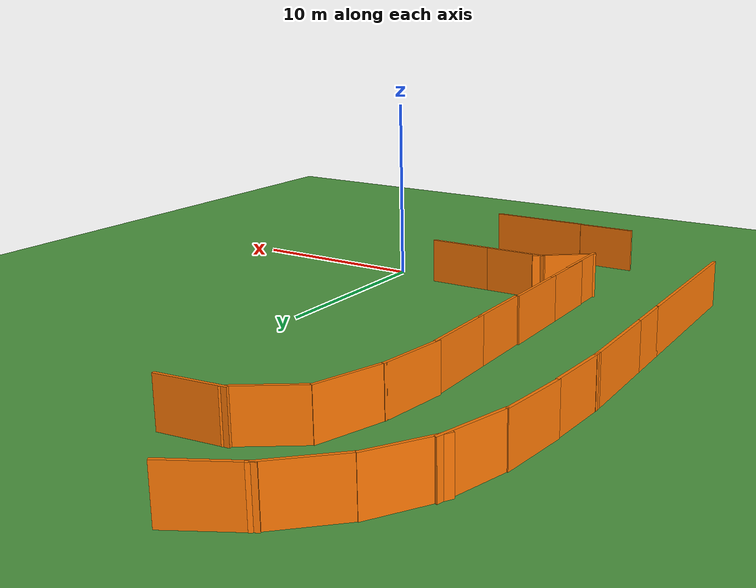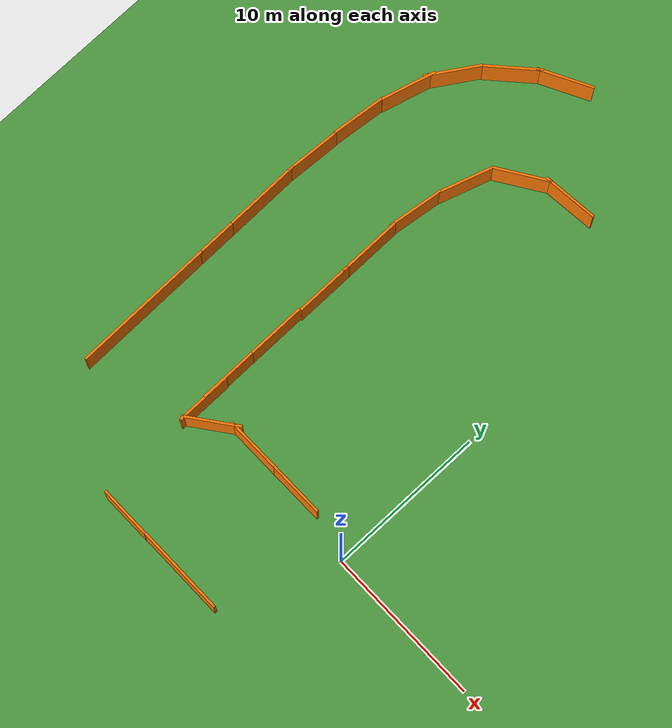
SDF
<sdf version="1.7">
 <world name="cimen_zemin_dunyasi">
  <model name="cimen_zemin">
   <static>1</static>
   <pose>-4.07306 2.53992 0 0 -0 0</pose>
   <link name="zemin_linki">
    <collision name="zemin_collision">
     <geometry><box><size>250 250 0.1</size></box></geometry>
     <surface><friction><ode><mu>1</mu><mu2>1</mu2></ode></friction></surface>
    </collision>
    <visual name="zemin_visual">
     <geometry><box><size>250 250 0.1</size></box></geometry>
     <material>
      <script><uri>file://media/materials/scripts/gazebo.material</uri><name>Gazebo/Grass</name></script>
     </material>
    </visual>
   </link>
  </model>
  <model name="barier3_clone_clone_clone_clone_0_clone_clone_clone_clone_0_clone_0">
   <link name="Wall_5">
    <pose>-0.876122 -2.31251 -0.000674 0 -0 0</pose>
    <inertial>
     <inertia><ixx>0</ixx><ixy>0</ixy><ixz>0</ixz><iyy>0</iyy><iyz>0</iyz><izz>0</izz></inertia>
     <mass>0</mass>
    </inertial>
    <visual name="Wall_5_Visual">
     <pose>0 0 1.25 0 -0 0</pose>
     <geometry><box><size>3.28339 0.15 2.5</size></box></geometry>
     <material>
      <script><uri>file://media/materials/scripts/gazebo.material</uri><name>Gazebo/Grey</name></script>
      <ambient>0.996078 0.47451 0.0196078 1</ambient>
      <shader type="pixel"/>
     </material>
     <meta><layer>0</layer></meta>
    </visual>
    <collision name="Wall_5_Collision">
     <pose>0 0 1.25 0 -0 0</pose>
     <geometry><box><size>3.28339 0.15 2.5</size></box></geometry>
     <surface>
      <friction>
       <ode><mu>1</mu><mu2>1</mu2><fdir1>0 0 0</fdir1><slip1>0</slip1><slip2>0</slip2></ode>
       <torsional>
        <coefficient>1</coefficient>
        <patch_radius>0</patch_radius>
        <surface_radius>0</surface_radius>
        <use_patch_radius>1</use_patch_radius>
        <ode><slip>0</slip></ode>
       </torsional>
      </friction>
      <bounce><restitution_coefficient>0</restitution_coefficient><threshold>1e+06</threshold></bounce>
      <contact>
       <collide_without_contact>0</collide_without_contact>
       <collide_without_contact_bitmask>1</collide_without_contact_bitmask>
       <collide_bitmask>1</collide_bitmask>
       <ode>
        <soft_cfm>0</soft_cfm>
        <soft_erp>0.2</soft_erp>
        <kp>1e+13</kp>
        <kd>1</kd>
        <max_vel>0.01</max_vel>
        <min_depth>0</min_depth>
       </ode>
       <bullet>
        <split_impulse>1</split_impulse>
        <split_impulse_penetration_threshold>-0.01</split_impulse_penetration_threshold>
        <soft_cfm>0</soft_cfm>
        <soft_erp>0.2</soft_erp>
        <kp>1e+13</kp>
        <kd>1</kd>
       </bullet>
      </contact>
     </surface>
    </collision>
   </link>
   <link name="Wall_9">
    <pose>3.5903 -2.29153 0.020971 0 -0 0</pose>
    <inertial>
     <inertia><ixx>0</ixx><ixy>0</ixy><ixz>0</ixz><iyy>0</iyy><iyz>0</iyz><izz>0</izz></inertia>
     <mass>0</mass>
    </inertial>
    <visual name="Wall_9_Visual">
     <pose>0 0 1.25 0 -0 0</pose>
     <geometry><box><size>5.65108 0.15 2.5</size></box></geometry>
     <material>
      <script><uri>file://media/materials/scripts/gazebo.material</uri><name>Gazebo/Grey</name></script>
      <ambient>0.996078 0.47451 0.0196078 1</ambient>
      <shader type="pixel"/>
     </material>
     <meta><layer>0</layer></meta>
    </visual>
    <collision name="Wall_9_Collision">
     <pose>0 0 1.25 0 -0 0</pose>
     <geometry><box><size>5.65108 0.15 2.5</size></box></geometry>
     <surface>
      <friction>
       <ode><mu>1</mu><mu2>1</mu2><fdir1>0 0 0</fdir1><slip1>0</slip1><slip2>0</slip2></ode>
       <torsional>
        <coefficient>1</coefficient>
        <patch_radius>0</patch_radius>
        <surface_radius>0</surface_radius>
        <use_patch_radius>1</use_patch_radius>
        <ode><slip>0</slip></ode>
       </torsional>
      </friction>
      <bounce><restitution_coefficient>0</restitution_coefficient><threshold>1e+06</threshold></bounce>
      <contact>
       <collide_without_contact>0</collide_without_contact>
       <collide_without_contact_bitmask>1</collide_without_contact_bitmask>
       <collide_bitmask>1</collide_bitmask>
       <ode>
        <soft_cfm>0</soft_cfm>
        <soft_erp>0.2</soft_erp>
        <kp>1e+13</kp>
        <kd>1</kd>
        <max_vel>0.01</max_vel>
        <min_depth>0</min_depth>
       </ode>
       <bullet>
        <split_impulse>1</split_impulse>
        <split_impulse_penetration_threshold>-0.01</split_impulse_penetration_threshold>
        <soft_cfm>0</soft_cfm>
        <soft_erp>0.2</soft_erp>
        <kp>1e+13</kp>
        <kd>1</kd>
       </bullet>
      </contact>
     </surface>
    </collision>
   </link>
   <static>1</static>
   <pose>-9.11126 -4.76807 0 0 -0 0</pose>
  </model>
  <model name="barrier2">
   <pose>-10.2583 29.644 0 0 -0 0.479879</pose>
   <link name="Wall_3">
    <collision name="Wall_3_Collision">
     <geometry><box><size>3.5 0.15 2.5</size></box></geometry>
     <pose>0 0 1.25 0 -0 0</pose>
    </collision>
    <visual name="Wall_3_Visual">
     <pose>0 0 1.25 0 -0 0</pose>
     <geometry><box><size>3.5 0.15 2.5</size></box></geometry>
     <material>
      <script><uri>file://media/materials/scripts/gazebo.material</uri><name>Gazebo/Grey</name></script>
      <ambient>0.996078 0.47451 0.0196078 1</ambient>
     </material>
     <meta><layer>0</layer></meta>
    </visual>
    <pose>-1.55327 -0.720218 0 0 -0 0</pose>
   </link>
   <static>1</static>
  </model>
  <model name="barrier2_clone">
   <pose>-13.1416 28.1133 0 0 -0 0.741197</pose>
   <link name="Wall_3">
    <collision name="Wall_3_Collision">
     <geometry><box><size>3.5 0.15 2.5</size></box></geometry>
     <pose>0 0 1.25 0 -0 0</pose>
    </collision>
    <visual name="Wall_3_Visual">
     <pose>0 0 1.25 0 -0 0</pose>
     <geometry><box><size>3.5 0.15 2.5</size></box></geometry>
     <material>
      <script><uri>file://media/materials/scripts/gazebo.material</uri><name>Gazebo/Grey</name></script>
      <ambient>0.996078 0.47451 0.0196078 1</ambient>
     </material>
     <meta><layer>0</layer></meta>
    </visual>
    <pose>-1.55327 -0.720218 0 0 -0 0</pose>
   </link>
   <static>1</static>
  </model>
  <model name="barrier2_clone_clone">
   <pose>-15.814 25.6119 0 0 -0 1.00081</pose>
   <link name="Wall_3">
    <collision name="Wall_3_Collision">
     <geometry><box><size>3.5 0.15 2.5</size></box></geometry>
     <pose>0 0 1.25 0 -0 0</pose>
    </collision>
    <visual name="Wall_3_Visual">
     <pose>0 0 1.25 0 -0 0</pose>
     <geometry><box><size>3.5 0.15 2.5</size></box></geometry>
     <material>
      <script><uri>file://media/materials/scripts/gazebo.material</uri><name>Gazebo/Grey</name></script>
      <ambient>0.996078 0.47451 0.0196078 1</ambient>
     </material>
     <meta><layer>0</layer></meta>
    </visual>
    <pose>-1.55327 -0.720218 0 0 -0 0</pose>
   </link>
   <static>1</static>
  </model>
  <model name="barrier2_clone_0">
   <pose>-4.58312 24.4241 0 0 -0 0.100794</pose>
   <link name="Wall_3">
    <collision name="Wall_3_Collision">
     <geometry><box><size>3.5 0.15 2.5</size></box></geometry>
     <pose>0 0 1.25 0 -0 0</pose>
    </collision>
    <visual name="Wall_3_Visual">
     <pose>0 0 1.25 0 -0 0</pose>
     <geometry><box><size>3.5 0.15 2.5</size></box></geometry>
     <material>
      <script><uri>file://media/materials/scripts/gazebo.material</uri><name>Gazebo/Grey</name></script>
      <ambient>0.996078 0.47451 0.0196078 1</ambient>
     </material>
     <meta><layer>0</layer></meta>
    </visual>
    <pose>-1.55327 -0.720218 0 0 -0 0</pose>
   </link>
   <static>1</static>
  </model>
  <model name="barrier2_clone_0_clone">
   <pose>-7.9744 23.9611 0 0 -0 0.576446</pose>
   <link name="Wall_3">
    <collision name="Wall_3_Collision">
     <geometry><box><size>3.5 0.15 2.5</size></box></geometry>
     <pose>0 0 1.25 0 -0 0</pose>
    </collision>
    <visual name="Wall_3_Visual">
     <pose>0 0 1.25 0 -0 0</pose>
     <geometry><box><size>3.5 0.15 2.5</size></box></geometry>
     <material>
      <script><uri>file://media/materials/scripts/gazebo.material</uri><name>Gazebo/Grey</name></script>
      <ambient>0.996078 0.47451 0.0196078 1</ambient>
     </material>
     <meta><layer>0</layer></meta>
    </visual>
    <pose>-1.55327 -0.720218 0 0 -0 0</pose>
   </link>
   <static>1</static>
  </model>
  <model name="barrier2_clone_0_clone_clone">
   <pose>-11.0573 21.664 0 0 -0 1.25855</pose>
   <link name="Wall_3">
    <collision name="Wall_3_Collision">
     <geometry><box><size>3.5 0.15 2.5</size></box></geometry>
     <pose>0 0 1.25 0 -0 0</pose>
    </collision>
    <visual name="Wall_3_Visual">
     <pose>0 0 1.25 0 -0 0</pose>
     <geometry><box><size>3.5 0.15 2.5</size></box></geometry>
     <material>
      <script><uri>file://media/materials/scripts/gazebo.material</uri><name>Gazebo/Grey</name></script>
      <ambient>0.996078 0.47451 0.0196078 1</ambient>
     </material>
     <meta><layer>0</layer></meta>
    </visual>
    <pose>-1.55327 -0.720218 0 0 -0 0</pose>
   </link>
   <static>1</static>
  </model>
  <model name="barrier2_clone_0_clone_clone_clone">
   <pose>-12.102 18.3665 0 0 -0 1.43662</pose>
   <link name="Wall_3">
    <collision name="Wall_3_Collision">
     <geometry><box><size>3.5 0.15 2.5</size></box></geometry>
     <pose>0 0 1.25 0 -0 0</pose>
    </collision>
    <visual name="Wall_3_Visual">
     <pose>0 0 1.25 0 -0 0</pose>
     <geometry><box><size>3.5 0.15 2.5</size></box></geometry>
     <material>
      <script><uri>file://media/materials/scripts/gazebo.material</uri><name>Gazebo/Grey</name></script>
      <ambient>0.996078 0.47451 0.0196078 1</ambient>
     </material>
     <meta><layer>0</layer></meta>
    </visual>
    <pose>-1.55327 -0.720218 0 0 -0 0</pose>
   </link>
   <static>1</static>
  </model>
  <model name="barrier2_clone_clone_clone">
   <pose>-17.4205 23.1156 0 0 -0 1.30186</pose>
   <link name="Wall_3">
    <collision name="Wall_3_Collision">
     <geometry><box><size>3.5 0.15 2.5</size></box></geometry>
     <pose>0 0 1.25 0 -0 0</pose>
    </collision>
    <visual name="Wall_3_Visual">
     <pose>0 0 1.25 0 -0 0</pose>
     <geometry><box><size>3.5 0.15 2.5</size></box></geometry>
     <material>
      <script><uri>file://media/materials/scripts/gazebo.material</uri><name>Gazebo/Grey</name></script>
      <ambient>0.996078 0.47451 0.0196078 1</ambient>
     </material>
     <meta><layer>0</layer></meta>
    </visual>
    <pose>-1.55327 -0.720218 0 0 -0 0</pose>
   </link>
   <static>1</static>
  </model>
  <model name="barrier2_clone_clone_clone_clone">
   <pose>-18.357 19.7461 0 0 -0 1.46324</pose>
   <link name="Wall_3">
    <collision name="Wall_3_Collision">
     <geometry><box><size>3.5 0.15 2.5</size></box></geometry>
     <pose>0 0 1.25 0 -0 0</pose>
    </collision>
    <visual name="Wall_3_Visual">
     <pose>0 0 1.25 0 -0 0</pose>
     <geometry><box><size>3.5 0.15 2.5</size></box></geometry>
     <material>
      <script><uri>file://media/materials/scripts/gazebo.material</uri><name>Gazebo/Grey</name></script>
      <ambient>0.996078 0.47451 0.0196078 1</ambient>
     </material>
     <meta><layer>0</layer></meta>
    </visual>
    <pose>-1.55327 -0.720218 0 0 -0 0</pose>
   </link>
   <static>1</static>
  </model>
  <model name="barrier2_clone_clone_clone_clone_clone">
   <pose>-18.687 16.3208 0 0 -0 1.50893</pose>
   <link name="Wall_3">
    <collision name="Wall_3_Collision">
     <geometry><box><size>3.5 0.15 2.5</size></box></geometry>
     <pose>0 0 1.25 0 -0 0</pose>
    </collision>
    <visual name="Wall_3_Visual">
     <pose>0 0 1.25 0 -0 0</pose>
     <geometry><box><size>3.5 0.15 2.5</size></box></geometry>
     <material>
      <script><uri>file://media/materials/scripts/gazebo.material</uri><name>Gazebo/Grey</name></script>
      <ambient>0.996078 0.47451 0.0196078 1</ambient>
     </material>
     <meta><layer>0</layer></meta>
    </visual>
    <pose>-1.55327 -0.720218 0 0 -0 0</pose>
   </link>
   <static>1</static>
  </model>
  <model name="barier3_0">
   <pose>-20.3436 5.22433 0 0 -0 1.58461</pose>
   <link name="Wall_5">
    <collision name="Wall_5_Collision">
     <geometry><box><size>9 0.15 2.5</size></box></geometry>
     <pose>0 0 1.25 0 -0 0</pose>
    </collision>
    <visual name="Wall_5_Visual">
     <pose>0 0 1.25 0 -0 0</pose>
     <geometry><box><size>9 0.15 2.5</size></box></geometry>
     <material>
      <script><uri>file://media/materials/scripts/gazebo.material</uri><name>Gazebo/Grey</name></script>
      <ambient>0.996078 0.47451 0.0196078 1</ambient>
     </material>
     <meta><layer>0</layer></meta>
    </visual>
    <pose>-3.6 -2.29057 0 0 -0 0</pose>
   </link>
   <link name="Wall_7">
    <collision name="Wall_7_Collision">
     <geometry><box><size>2.5 0.15 2.5</size></box></geometry>
     <pose>0 0 1.25 0 -0 0</pose>
    </collision>
    <visual name="Wall_7_Visual">
     <pose>0 0 1.25 0 -0 0</pose>
     <geometry><box><size>2.5 0.15 2.5</size></box></geometry>
     <material>
      <script><uri>file://media/materials/scripts/gazebo.material</uri><name>Gazebo/Grey</name></script>
      <ambient>0.996078 0.47451 0.0196078 1</ambient>
     </material>
     <meta><layer>0</layer></meta>
    </visual>
    <pose>2 -2.29057 0 0 -0 0</pose>
   </link>
   <link name="Wall_9">
    <collision name="Wall_9_Collision">
     <geometry><box><size>5 0.15 2.5</size></box></geometry>
     <pose>0 0 1.25 0 -0 0</pose>
    </collision>
    <visual name="Wall_9_Visual">
     <pose>0 0 1.25 0 -0 0</pose>
     <geometry><box><size>5 0.15 2.5</size></box></geometry>
     <material>
      <script><uri>file://media/materials/scripts/gazebo.material</uri><name>Gazebo/Grey</name></script>
      <ambient>0.996078 0.47451 0.0196078 1</ambient>
     </material>
     <meta><layer>0</layer></meta>
    </visual>
    <pose>5.6 -2.29057 0 0 -0 0</pose>
   </link>
   <static>1</static>
  </model>
  <model name="barier3_clone_clone_clone_clone_0_clone_clone_0_clone">
   <link name="Wall_5">
    <pose>-1.14926 -2.31114 0 0 -0 0</pose>
    <inertial>
     <inertia><ixx>0</ixx><ixy>0</ixy><ixz>0</ixz><iyy>0</iyy><iyz>0</iyz><izz>0</izz></inertia>
     <mass>0</mass>
    </inertial>
    <visual name="Wall_5_Visual">
     <pose>0 0 1.25 0 -0 0</pose>
     <geometry><box><size>4.04839 0.15 2.5</size></box></geometry>
     <material>
      <script><uri>file://media/materials/scripts/gazebo.material</uri><name>Gazebo/Grey</name></script>
      <ambient>0.996078 0.47451 0.0196078 1</ambient>
      <shader type="pixel"/>
     </material>
     <meta><layer>0</layer></meta>
    </visual>
    <collision name="Wall_5_Collision">
     <pose>0 0 1.25 0 -0 0</pose>
     <geometry><box><size>4.04839 0.15 2.5</size></box></geometry>
     <surface>
      <friction>
       <ode><mu>1</mu><mu2>1</mu2><fdir1>0 0 0</fdir1><slip1>0</slip1><slip2>0</slip2></ode>
       <torsional>
        <coefficient>1</coefficient>
        <patch_radius>0</patch_radius>
        <surface_radius>0</surface_radius>
        <use_patch_radius>1</use_patch_radius>
        <ode><slip>0</slip></ode>
       </torsional>
      </friction>
      <bounce><restitution_coefficient>0</restitution_coefficient><threshold>1e+06</threshold></bounce>
      <contact>
       <collide_without_contact>0</collide_without_contact>
       <collide_without_contact_bitmask>1</collide_without_contact_bitmask>
       <collide_bitmask>1</collide_bitmask>
       <ode>
        <soft_cfm>0</soft_cfm>
        <soft_erp>0.2</soft_erp>
        <kp>1e+13</kp>
        <kd>1</kd>
        <max_vel>0.01</max_vel>
        <min_depth>0</min_depth>
       </ode>
       <bullet>
        <split_impulse>1</split_impulse>
        <split_impulse_penetration_threshold>-0.01</split_impulse_penetration_threshold>
        <soft_cfm>0</soft_cfm>
        <soft_erp>0.2</soft_erp>
        <kp>1e+13</kp>
        <kd>1</kd>
       </bullet>
      </contact>
     </surface>
    </collision>
   </link>
   <link name="Wall_9">
    <pose>2.34493 -2.31065 0 0 -0 0</pose>
    <inertial>
     <inertia><ixx>0</ixx><ixy>0</ixy><ixz>0</ixz><iyy>0</iyy><iyz>0</iyz><izz>0</izz></inertia>
     <mass>0</mass>
    </inertial>
    <visual name="Wall_9_Visual">
     <pose>0 0 1.25 0 -0 0</pose>
     <geometry><box><size>3.66586 0.15 2.5</size></box></geometry>
     <material>
      <script><uri>file://media/materials/scripts/gazebo.material</uri><name>Gazebo/Grey</name></script>
      <ambient>0.996078 0.47451 0.0196078 1</ambient>
      <shader type="pixel"/>
     </material>
     <meta><layer>0</layer></meta>
    </visual>
    <collision name="Wall_9_Collision">
     <pose>0 0 1.25 0 -0 0</pose>
     <geometry><box><size>3.66586 0.15 2.5</size></box></geometry>
     <surface>
      <friction>
       <ode><mu>1</mu><mu2>1</mu2><fdir1>0 0 0</fdir1><slip1>0</slip1><slip2>0</slip2></ode>
       <torsional>
        <coefficient>1</coefficient>
        <patch_radius>0</patch_radius>
        <surface_radius>0</surface_radius>
        <use_patch_radius>1</use_patch_radius>
        <ode><slip>0</slip></ode>
       </torsional>
      </friction>
      <bounce><restitution_coefficient>0</restitution_coefficient><threshold>1e+06</threshold></bounce>
      <contact>
       <collide_without_contact>0</collide_without_contact>
       <collide_without_contact_bitmask>1</collide_without_contact_bitmask>
       <collide_bitmask>1</collide_bitmask>
       <ode>
        <soft_cfm>0</soft_cfm>
        <soft_erp>0.2</soft_erp>
        <kp>1e+13</kp>
        <kd>1</kd>
        <max_vel>0.01</max_vel>
        <min_depth>0</min_depth>
       </ode>
       <bullet>
        <split_impulse>1</split_impulse>
        <split_impulse_penetration_threshold>-0.01</split_impulse_penetration_threshold>
        <soft_cfm>0</soft_cfm>
        <soft_erp>0.2</soft_erp>
        <kp>1e+13</kp>
        <kd>1</kd>
       </bullet>
      </contact>
     </surface>
    </collision>
   </link>
   <static>1</static>
   <pose>-9.43805 12.101 0 0 0 -1.56598</pose>
  </model>
  <model name="barier3_clone_clone_clone_clone_0_clone_clone_0_clone_clone">
   <link name="Wall_5">
    <pose>-1.14926 -2.31114 0 0 -0 0</pose>
    <inertial>
     <inertia><ixx>0</ixx><ixy>0</ixy><ixz>0</ixz><iyy>0</iyy><iyz>0</iyz><izz>0</izz></inertia>
     <mass>0</mass>
    </inertial>
    <visual name="Wall_5_Visual">
     <pose>0 0 1.25 0 -0 0</pose>
     <geometry><box><size>4.04839 0.15 2.5</size></box></geometry>
     <material>
      <script><uri>file://media/materials/scripts/gazebo.material</uri><name>Gazebo/Grey</name></script>
      <ambient>0.996078 0.47451 0.0196078 1</ambient>
      <shader type="pixel"/>
     </material>
     <meta><layer>0</layer></meta>
    </visual>
    <collision name="Wall_5_Collision">
     <pose>0 0 1.25 0 -0 0</pose>
     <geometry><box><size>4.04839 0.15 2.5</size></box></geometry>
     <surface>
      <friction>
       <ode><mu>1</mu><mu2>1</mu2><fdir1>0 0 0</fdir1><slip1>0</slip1><slip2>0</slip2></ode>
       <torsional>
        <coefficient>1</coefficient>
        <patch_radius>0</patch_radius>
        <surface_radius>0</surface_radius>
        <use_patch_radius>1</use_patch_radius>
        <ode><slip>0</slip></ode>
       </torsional>
      </friction>
      <bounce><restitution_coefficient>0</restitution_coefficient><threshold>1e+06</threshold></bounce>
      <contact>
       <collide_without_contact>0</collide_without_contact>
       <collide_without_contact_bitmask>1</collide_without_contact_bitmask>
       <collide_bitmask>1</collide_bitmask>
       <ode>
        <soft_cfm>0</soft_cfm>
        <soft_erp>0.2</soft_erp>
        <kp>1e+13</kp>
        <kd>1</kd>
        <max_vel>0.01</max_vel>
        <min_depth>0</min_depth>
       </ode>
       <bullet>
        <split_impulse>1</split_impulse>
        <split_impulse_penetration_threshold>-0.01</split_impulse_penetration_threshold>
        <soft_cfm>0</soft_cfm>
        <soft_erp>0.2</soft_erp>
        <kp>1e+13</kp>
        <kd>1</kd>
       </bullet>
      </contact>
     </surface>
    </collision>
   </link>
   <link name="Wall_9">
    <pose>2.34493 -2.31065 0 0 -0 0</pose>
    <inertial>
     <inertia><ixx>0</ixx><ixy>0</ixy><ixz>0</ixz><iyy>0</iyy><iyz>0</iyz><izz>0</izz></inertia>
     <mass>0</mass>
    </inertial>
    <visual name="Wall_9_Visual">
     <pose>0 0 1.25 0 -0 0</pose>
     <geometry><box><size>3.66586 0.15 2.5</size></box></geometry>
     <material>
      <script><uri>file://media/materials/scripts/gazebo.material</uri><name>Gazebo/Grey</name></script>
      <ambient>0.996078 0.47451 0.0196078 1</ambient>
      <shader type="pixel"/>
     </material>
     <meta><layer>0</layer></meta>
    </visual>
    <collision name="Wall_9_Collision">
     <pose>0 0 1.25 0 -0 0</pose>
     <geometry><box><size>3.66586 0.15 2.5</size></box></geometry>
     <surface>
      <friction>
       <ode><mu>1</mu><mu2>1</mu2><fdir1>0 0 0</fdir1><slip1>0</slip1><slip2>0</slip2></ode>
       <torsional>
        <coefficient>1</coefficient>
        <patch_radius>0</patch_radius>
        <surface_radius>0</surface_radius>
        <use_patch_radius>1</use_patch_radius>
        <ode><slip>0</slip></ode>
       </torsional>
      </friction>
      <bounce><restitution_coefficient>0</restitution_coefficient><threshold>1e+06</threshold></bounce>
      <contact>
       <collide_without_contact>0</collide_without_contact>
       <collide_without_contact_bitmask>1</collide_without_contact_bitmask>
       <collide_bitmask>1</collide_bitmask>
       <ode>
        <soft_cfm>0</soft_cfm>
        <soft_erp>0.2</soft_erp>
        <kp>1e+13</kp>
        <kd>1</kd>
        <max_vel>0.01</max_vel>
        <min_depth>0</min_depth>
       </ode>
       <bullet>
        <split_impulse>1</split_impulse>
        <split_impulse_penetration_threshold>-0.01</split_impulse_penetration_threshold>
        <soft_cfm>0</soft_cfm>
        <soft_erp>0.2</soft_erp>
        <kp>1e+13</kp>
        <kd>1</kd>
       </bullet>
      </contact>
     </surface>
    </collision>
   </link>
   <static>1</static>
   <pose>-9.48925 4.74309 0 0 0 -1.56598</pose>
  </model>
  <model name="barrier2_clone_clone_0_clone_clone_clone_clone">
   <pose>-5.98223 -0.002861 0 0 0 -3.13631</pose>
   <link name="Wall_3">
    <collision name="Wall_3_Collision">
     <geometry><box><size>3.5 0.15 2.5</size></box></geometry>
     <pose>0 0 1.25 0 -0 0</pose>
    </collision>
    <visual name="Wall_3_Visual">
     <pose>0 0 1.25 0 -0 0</pose>
     <geometry><box><size>3.5 0.15 2.5</size></box></geometry>
     <material>
      <script><uri>file://media/materials/scripts/gazebo.material</uri><name>Gazebo/Grey</name></script>
      <ambient>0.996078 0.47451 0.0196078 1</ambient>
     </material>
     <meta><layer>0</layer></meta>
    </visual>
    <pose>-1.55327 -0.720218 0 0 -0 0</pose>
   </link>
   <static>1</static>
  </model>
  <model name="barrier2_clone_clone_0_clone_clone_clone_clone_clone">
   <pose>-9.47703 -0.025629 0 0 0 -3.13631</pose>
   <link name="Wall_3">
    <collision name="Wall_3_Collision">
     <geometry><box><size>3.5 0.15 2.5</size></box></geometry>
     <pose>0 0 1.25 0 -0 0</pose>
    </collision>
    <visual name="Wall_3_Visual">
     <pose>0 0 1.25 0 -0 0</pose>
     <geometry><box><size>3.5 0.15 2.5</size></box></geometry>
     <material>
      <script><uri>file://media/materials/scripts/gazebo.material</uri><name>Gazebo/Grey</name></script>
      <ambient>0.996078 0.47451 0.0196078 1</ambient>
     </material>
     <meta><layer>0</layer></meta>
    </visual>
    <pose>-1.55327 -0.720218 0 0 -0 0</pose>
   </link>
   <static>1</static>
  </model>
  <model name="barrier2_clone_clone_0_clone_clone_clone_clone_clone_clone">
   <pose>-11.2899 -1.59351 0 0 0 -2.49865</pose>
   <link name="Wall_3">
    <collision name="Wall_3_Collision">
     <geometry><box><size>3.5 0.15 2.5</size></box></geometry>
     <pose>0 0 1.25 0 -0 0</pose>
    </collision>
    <visual name="Wall_3_Visual">
     <pose>0 0 1.25 0 -0 0</pose>
     <geometry><box><size>3.5 0.15 2.5</size></box></geometry>
     <material>
      <script><uri>file://media/materials/scripts/gazebo.material</uri><name>Gazebo/Grey</name></script>
      <ambient>0.996078 0.47451 0.0196078 1</ambient>
     </material>
     <meta><layer>0</layer></meta>
    </visual>
    <pose>-1.55327 -0.720218 0 0 -0 0</pose>
   </link>
   <static>1</static>
  </model>
  <model name="barrier2_clone_clone_0_clone_clone_clone_clone_clone_clone_clone">
   <pose>-11.0179 -1.11958 0 0 0 -1.56879</pose>
   <link name="Wall_3">
    <collision name="Wall_3_Collision">
     <geometry><box><size>3.5 0.15 2.5</size></box></geometry>
     <pose>0 0 1.25 0 -0 0</pose>
    </collision>
    <visual name="Wall_3_Visual">
     <pose>0 0 1.25 0 -0 0</pose>
     <geometry><box><size>3.5 0.15 2.5</size></box></geometry>
     <material>
      <script><uri>file://media/materials/scripts/gazebo.material</uri><name>Gazebo/Grey</name></script>
      <ambient>0.996078 0.47451 0.0196078 1</ambient>
     </material>
     <meta><layer>0</layer></meta>
    </visual>
    <pose>-1.55327 -0.720218 0 0 -0 0</pose>
   </link>
   <static>1</static>
  </model>
 </world>
</sdf>
